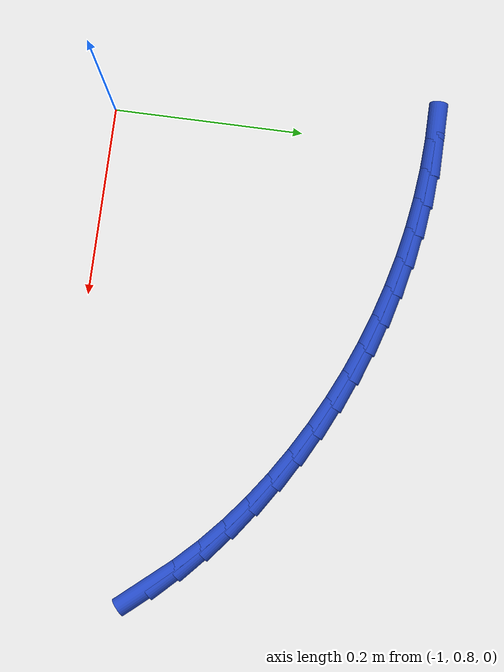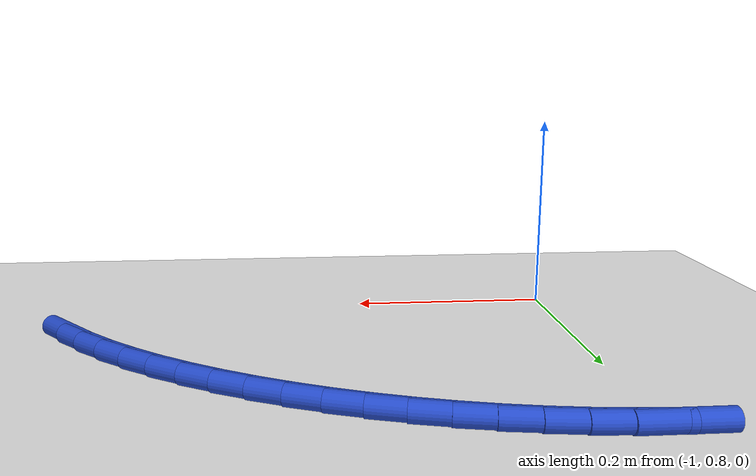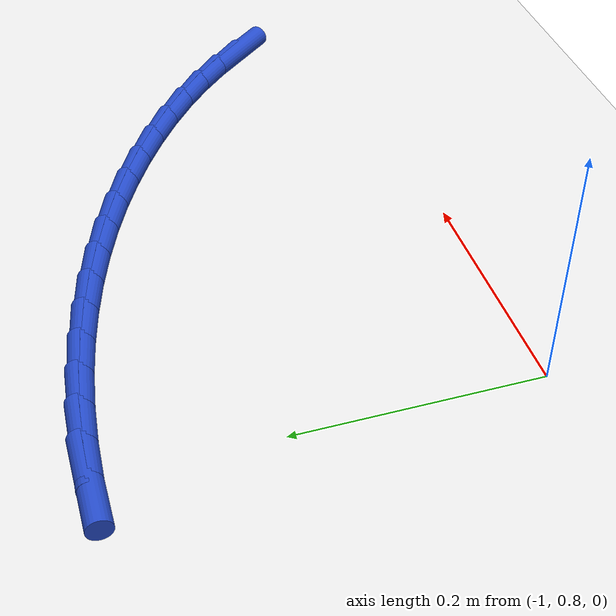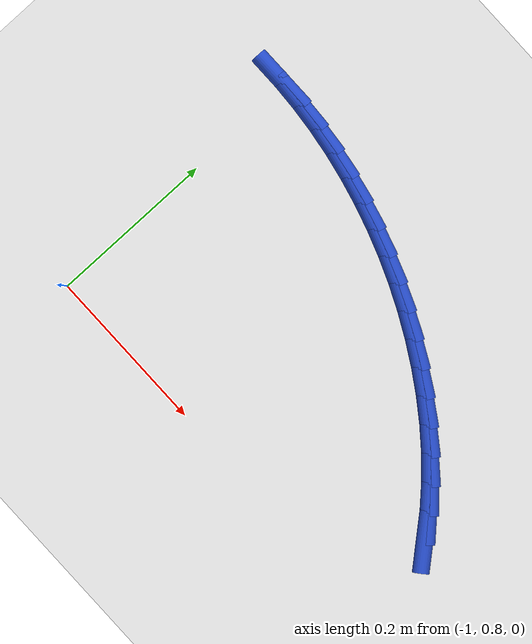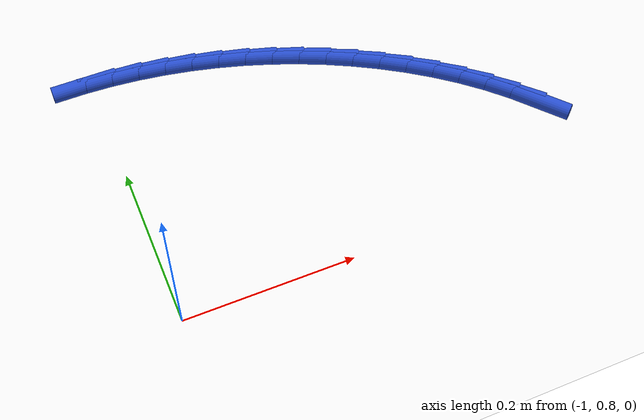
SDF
<sdf version="1.6">
 <world name="default">
  <model name="ground_plane">
   <static>1</static>
   <link name="link">
    <collision name="collision">
     <geometry><plane><normal>0 0 1</normal><size>100 100</size></plane></geometry>
     <surface><friction><ode><mu>100</mu><mu2>50</mu2></ode></friction></surface>
    </collision>
    <visual name="visual">
     <cast_shadows>0</cast_shadows>
     <geometry><plane><normal>0 0 1</normal><size>100 100</size></plane></geometry>
     <material>
      <script><uri>file://media/materials/scripts/gazebo.material</uri><name>Gazebo/WhiteGlow</name></script>
     </material>
    </visual>
   </link>
  </model>
  <model name="line">
   <link name="link_33">
    <pose>-0.5115806831743348 0.908581058341203 0.01 0 1.57 -0.8616593909967866</pose>
    <collision name="collision">
     <geometry><cylinder><radius>0.01</radius><length>0.08</length></cylinder></geometry>
    </collision>
    <visual name="visual">
     <material>
      <script><name>Gazebo/Blue</name><uri>file://media/materials/scripts/gazebo.material</uri></script>
     </material>
     <geometry><cylinder><radius>0.01</radius><length>0.08</length></cylinder></geometry>
    </visual>
   </link>
   <link name="link_34">
    <pose>-0.5328834745917851 0.9334086447935108 0.01 0 1.57 -0.7949507242816893</pose>
    <collision name="collision">
     <geometry><cylinder><radius>0.01</radius><length>0.08</length></cylinder></geometry>
    </collision>
    <visual name="visual">
     <material>
      <script><name>Gazebo/Blue</name><uri>file://media/materials/scripts/gazebo.material</uri></script>
     </material>
     <geometry><cylinder><radius>0.01</radius><length>0.08</length></cylinder></geometry>
    </visual>
   </link>
   <link name="link_35">
    <pose>-0.5559009350011416 0.9568701114893574 0.01 0 1.57 -0.7326248424997793</pose>
    <collision name="collision">
     <geometry><cylinder><radius>0.01</radius><length>0.08</length></cylinder></geometry>
    </collision>
    <visual name="visual">
     <material>
      <script><name>Gazebo/Blue</name><uri>file://media/materials/scripts/gazebo.material</uri></script>
     </material>
     <geometry><cylinder><radius>0.01</radius><length>0.08</length></cylinder></geometry>
    </visual>
   </link>
   <link name="link_36">
    <pose>-0.5804591899115047 0.9789640852472004 0.01 0 1.57 -0.6743872848858621</pose>
    <collision name="collision">
     <geometry><cylinder><radius>0.01</radius><length>0.08</length></cylinder></geometry>
    </collision>
    <visual name="visual">
     <material>
      <script><name>Gazebo/Blue</name><uri>file://media/materials/scripts/gazebo.material</uri></script>
     </material>
     <geometry><cylinder><radius>0.01</radius><length>0.08</length></cylinder></geometry>
    </visual>
   </link>
   <link name="link_37">
    <pose>-0.6063843648319763 0.9996891928854968 0.01 0 1.57 -0.6198760626431113</pose>
    <collision name="collision">
     <geometry><cylinder><radius>0.01</radius><length>0.08</length></cylinder></geometry>
    </collision>
    <visual name="visual">
     <material>
      <script><name>Gazebo/Blue</name><uri>file://media/materials/scripts/gazebo.material</uri></script>
     </material>
     <geometry><cylinder><radius>0.01</radius><length>0.08</length></cylinder></geometry>
    </visual>
   </link>
   <link name="link_38">
    <pose>-0.6335025852716571 1.0190440612227045 0.01 0 1.57 -0.5686908266370944</pose>
    <collision name="collision">
     <geometry><cylinder><radius>0.01</radius><length>0.08</length></cylinder></geometry>
    </collision>
    <visual name="visual">
     <material>
      <script><name>Gazebo/Blue</name><uri>file://media/materials/scripts/gazebo.material</uri></script>
     </material>
     <geometry><cylinder><radius>0.01</radius><length>0.08</length></cylinder></geometry>
    </visual>
   </link>
   <link name="link_39">
    <pose>-0.6616399767396481 1.0370273170772806 0.01 0 1.57 -0.5202596841059057</pose>
    <collision name="collision">
     <geometry><cylinder><radius>0.01</radius><length>0.08</length></cylinder></geometry>
    </collision>
    <visual name="visual">
     <material>
      <script><name>Gazebo/Blue</name><uri>file://media/materials/scripts/gazebo.material</uri></script>
     </material>
     <geometry><cylinder><radius>0.01</radius><length>0.08</length></cylinder></geometry>
    </visual>
   </link>
   <link name="link_40">
    <pose>-0.6906298716489333 1.0536358220195037 0.01 0 1.57 -0.4730301392752149</pose>
    <collision name="collision">
     <geometry><cylinder><radius>0.01</radius><length>0.08</length></cylinder></geometry>
    </collision>
    <visual name="visual">
     <material>
      <script><name>Gazebo/Blue</name><uri>file://media/materials/scripts/gazebo.material</uri></script>
     </material>
     <geometry><cylinder><radius>0.01</radius><length>0.08</length></cylinder></geometry>
    </visual>
   </link>
   <link name="link_41">
    <pose>-0.720362502618153 1.0688525005690028 0.01 0 1.57 -0.42625510700309627</pose>
    <collision name="collision">
     <geometry><cylinder><radius>0.01</radius><length>0.08</length></cylinder></geometry>
    </collision>
    <visual name="visual">
     <material>
      <script><name>Gazebo/Blue</name><uri>file://media/materials/scripts/gazebo.material</uri></script>
     </material>
     <geometry><cylinder><radius>0.01</radius><length>0.08</length></cylinder></geometry>
    </visual>
   </link>
   <link name="link_42">
    <pose>-0.7507551010814724 1.0826536641962077 0.01 0 1.57 -0.3797806625369157</pose>
    <collision name="collision">
     <geometry><cylinder><radius>0.01</radius><length>0.08</length></cylinder></geometry>
    </collision>
    <visual name="visual">
     <material>
      <script><name>Gazebo/Blue</name><uri>file://media/materials/scripts/gazebo.material</uri></script>
     </material>
     <geometry><cylinder><radius>0.01</radius><length>0.08</length></cylinder></geometry>
    </visual>
   </link>
   <link name="link_43">
    <pose>-0.7817250613803163 1.0950155844692906 0.01 0 1.57 -0.3334519173002652</pose>
    <collision name="collision">
     <geometry><cylinder><radius>0.01</radius><length>0.08</length></cylinder></geometry>
    </collision>
    <visual name="visual">
     <material>
      <script><name>Gazebo/Blue</name><uri>file://media/materials/scripts/gazebo.material</uri></script>
     </material>
     <geometry><cylinder><radius>0.01</radius><length>0.08</length></cylinder></geometry>
    </visual>
   </link>
   <link name="link_44">
    <pose>-0.8131897778561092 1.1059145329564224 0.01 0 1.57 -0.28711072744376104</pose>
    <collision name="collision">
     <geometry><cylinder><radius>0.01</radius><length>0.08</length></cylinder></geometry>
    </collision>
    <visual name="visual">
     <material>
      <script><name>Gazebo/Blue</name><uri>file://media/materials/scripts/gazebo.material</uri></script>
     </material>
     <geometry><cylinder><radius>0.01</radius><length>0.08</length></cylinder></geometry>
    </visual>
   </link>
   <link name="link_45">
    <pose>-0.8450666448502755 1.1153267812257748 0.01 0 1.57 -0.24059673787612978</pose>
    <collision name="collision">
     <geometry><cylinder><radius>0.01</radius><length>0.08</length></cylinder></geometry>
    </collision>
    <visual name="visual">
     <material>
      <script><name>Gazebo/Blue</name><uri>file://media/materials/scripts/gazebo.material</uri></script>
     </material>
     <geometry><cylinder><radius>0.01</radius><length>0.08</length></cylinder></geometry>
    </visual>
   </link>
   <link name="link_46">
    <pose>-0.8772730567042402 1.12322860084552 0.01 0 1.57 -0.19374840617515232</pose>
    <collision name="collision">
     <geometry><cylinder><radius>0.01</radius><length>0.08</length></cylinder></geometry>
    </collision>
    <visual name="visual">
     <material>
      <script><name>Gazebo/Blue</name><uri>file://media/materials/scripts/gazebo.material</uri></script>
     </material>
     <geometry><cylinder><radius>0.01</radius><length>0.08</length></cylinder></geometry>
    </visual>
   </link>
   <link name="link_47">
    <pose>-0.9097264077594276 1.1295962633838286 0.01 0 1.57 -0.14640411665512928</pose>
    <collision name="collision">
     <geometry><cylinder><radius>0.01</radius><length>0.08</length></cylinder></geometry>
    </collision>
    <visual name="visual">
     <material>
      <script><name>Gazebo/Blue</name><uri>file://media/materials/scripts/gazebo.material</uri></script>
     </material>
     <geometry><cylinder><radius>0.01</radius><length>0.08</length></cylinder></geometry>
    </visual>
   </link>
   <link name="link_48">
    <pose>-0.9423440923572627 1.1344060404088727 0.01 0 1.57 -0.09840350027459845</pose>
    <collision name="collision">
     <geometry><cylinder><radius>0.01</radius><length>0.08</length></cylinder></geometry>
    </collision>
    <visual name="visual">
     <material>
      <script><name>Gazebo/Blue</name><uri>file://media/materials/scripts/gazebo.material</uri></script>
     </material>
     <geometry><cylinder><radius>0.01</radius><length>0.08</length></cylinder></geometry>
    </visual>
   </link>
   <link name="link_49">
    <pose>-0.9750435048391698 1.1376342034888238 0.01 0 1.57 -0.0495890805436805</pose>
    <collision name="collision">
     <geometry><cylinder><radius>0.01</radius><length>0.08</length></cylinder></geometry>
    </collision>
    <visual name="visual">
     <material>
      <script><name>Gazebo/Blue</name><uri>file://media/materials/scripts/gazebo.material</uri></script>
     </material>
     <geometry><cylinder><radius>0.01</radius><length>0.08</length></cylinder></geometry>
    </visual>
   </link>
   <link name="link_50">
    <pose>-1.0077420395465735 1.1392570241918534 0.01 0 1.57 0.00019163255612353897</pose>
    <collision name="collision">
     <geometry><cylinder><radius>0.01</radius><length>0.08</length></cylinder></geometry>
    </collision>
    <visual name="visual">
     <material>
      <script><name>Gazebo/Blue</name><uri>file://media/materials/scripts/gazebo.material</uri></script>
     </material>
     <geometry><cylinder><radius>0.01</radius><length>0.08</length></cylinder></geometry>
    </visual>
   </link>
  </model>
 </world>
</sdf>
